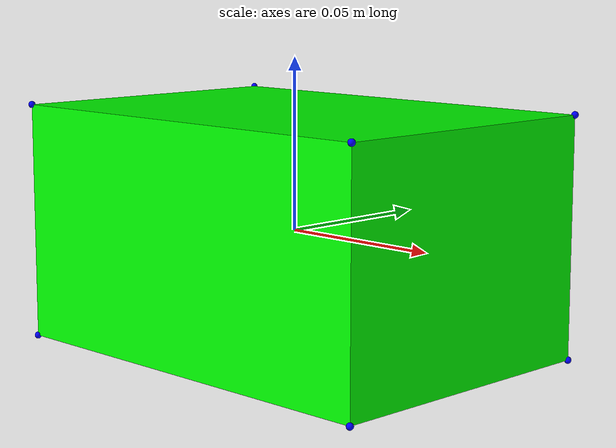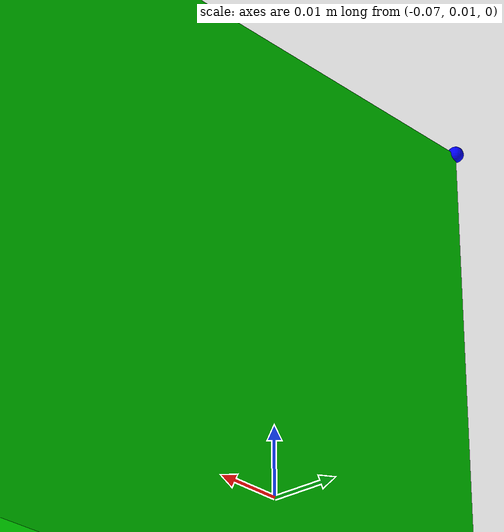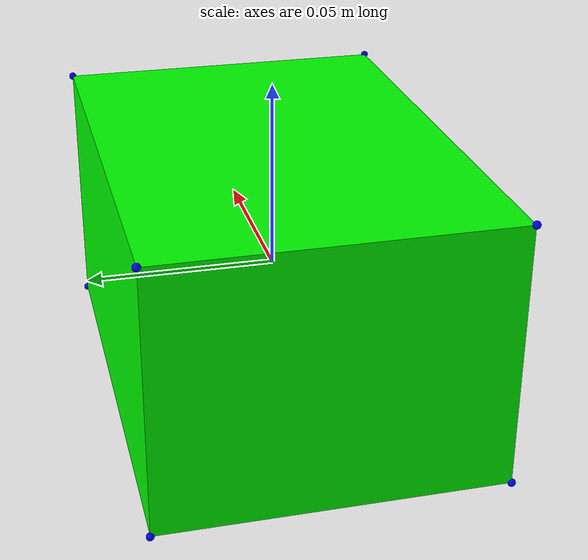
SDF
<?xml version="1.0"?>
<sdf version="1.7">
  <model name="box">

    <link name="corner_xynz">
      <inertial>
        <pose>0 0 0 0 0 0</pose>
        <mass>0</mass>
        <inertia>
          <ixx>0.</ixx>
          <ixy>0</ixy>
          <ixz>0</ixz>
          <iyy>0.</iyy>
          <iyz>0</iyz>
          <izz>0.</izz>
        </inertia>
      </inertial>
      <collision name="corner_xynz">
        <geometry>
          <sphere>
            <radius>0.001</radius>
          </sphere>
        </geometry>
        <drake:proximity_properties>
        <drake:mu_dynamic>0.3</drake:mu_dynamic>
        </drake:proximity_properties>
        <pose> 0.065 0.045 -0.035 0 0 0</pose>
      </collision>
      <visual name="corner_xynz">
        <geometry>
          <sphere>
            <radius>0.001</radius>
          </sphere>
        </geometry>
        <material>
        <diffuse>0 0 1 1</diffuse>
        </material>
        <pose> 0.065 0.045 -0.035 0 0 0</pose>
      </visual>
    </link>

    <link name="corner_xnynz">
      <inertial>
        <pose>0 0 0 0 0 0</pose>
        <mass>0</mass>
        <inertia>
          <ixx>0.</ixx>
          <ixy>0</ixy>
          <ixz>0</ixz>
          <iyy>0.</iyy>
          <iyz>0</iyz>
          <izz>0.</izz>
        </inertia>
      </inertial>
      <collision name="corner_xnynz">
        <geometry>
          <sphere>
            <radius>0.001</radius>
          </sphere>
        </geometry>
        <drake:proximity_properties>
        <drake:mu_dynamic>0.3</drake:mu_dynamic>
        </drake:proximity_properties>
        <pose> 0.065 -0.045 -0.035 0 0 0</pose>
      </collision>
      <visual name="corner_xnynz">
        <geometry>
          <sphere>
            <radius>0.001</radius>
          </sphere>
        </geometry>
        <material>
        <diffuse>0 0 1 1</diffuse>
        </material>
        <pose> 0.065 -0.045 -0.035 0 0 0</pose>
      </visual>
    </link>

    <link name="corner_nxynz">
      <inertial>
        <pose>0 0 0 0 0 0</pose>
        <mass>0</mass>
        <inertia>
          <ixx>0.</ixx>
          <ixy>0</ixy>
          <ixz>0</ixz>
          <iyy>0.</iyy>
          <iyz>0</iyz>
          <izz>0.</izz>
        </inertia>
      </inertial>
    <collision name="corner_nxynz">
        <geometry>
          <sphere>
            <radius>0.001</radius>
          </sphere>
        </geometry>
        <drake:proximity_properties>
        <drake:mu_dynamic>0.3</drake:mu_dynamic>
        </drake:proximity_properties>
        <pose>-0.065 0.045 -0.035 0 0 0</pose>
      </collision>
      <visual name="corner_nxynz">
        <geometry>
          <sphere>
            <radius>0.001</radius>
          </sphere>
        </geometry>
        <material>
        <diffuse>0 0 1 1</diffuse>
        </material>
        <pose>-0.065 0.045 -0.035 0 0 0</pose>
      </visual>
    </link>

    <link name="corner_nxnynz">
      <inertial>
        <pose>0 0 0 0 0 0</pose>
        <mass>0</mass>
        <inertia>
          <ixx>0.</ixx>
          <ixy>0</ixy>
          <ixz>0</ixz>
          <iyy>0.</iyy>
          <iyz>0</iyz>
          <izz>0.</izz>
        </inertia>
      </inertial>
      <collision name="corner_nxnynz">
        <geometry>
          <sphere>
            <radius>0.001</radius>
          </sphere>
        </geometry>
        <drake:proximity_properties>
          <drake:mu_dynamic>0.3</drake:mu_dynamic>
        </drake:proximity_properties>
        <pose>-0.065 -0.045 -0.035 0 0 0</pose>
      </collision>
      <visual name="corner_nxnynz">
        <geometry>
          <sphere>
            <radius>0.001</radius>
          </sphere>
        </geometry>
        <material>
        <diffuse>0 0 1 1</diffuse>
        </material>
        <pose>-0.065 -0.045 -0.035 0 0 0</pose>
      </visual>
    </link>

    <link name="corner_xyz">
      <inertial>
        <pose>0 0 0 0 0 0</pose>
        <mass>0</mass>
        <inertia>
          <ixx>0.</ixx>
          <ixy>0</ixy>
          <ixz>0</ixz>
          <iyy>0.</iyy>
          <iyz>0</iyz>
          <izz>0.</izz>
        </inertia>
      </inertial>
    <collision name="corner_xyz">
        <geometry>
          <sphere>
            <radius>0.001</radius>
          </sphere>
        </geometry>
        <drake:proximity_properties>
        <drake:mu_dynamic>0.3</drake:mu_dynamic>
        </drake:proximity_properties>
        <pose> 0.065 0.045 0.035 0 0 0</pose>
      </collision>
    <visual name="corner_xyz">
        <geometry>
          <sphere>
            <radius>0.001</radius>
          </sphere>
        </geometry>
        <material>
        <diffuse>0 0 1 1</diffuse>
        </material>
        <pose> 0.065 0.045 0.035 0 0 0</pose>
      </visual>
    </link>

    <link name="corner_xnyz">
      <inertial>
        <pose>0 0 0 0 0 0</pose>
        <mass>0</mass>
        <inertia>
          <ixx>0.</ixx>
          <ixy>0</ixy>
          <ixz>0</ixz>
          <iyy>0.</iyy>
          <iyz>0</iyz>
          <izz>0.</izz>
        </inertia>
      </inertial>
      <collision name="corner_xnyz">
        <geometry>
          <sphere>
            <radius>0.001</radius>
          </sphere>
        </geometry>
        <drake:proximity_properties>
        <drake:mu_dynamic>0.3</drake:mu_dynamic>
        </drake:proximity_properties>
        <pose> 0.065 -0.045 0.035 0 0 0</pose>
      </collision>
    <visual name="corner_xnyz">
        <geometry>
          <sphere>
            <radius>0.001</radius>
          </sphere>
        </geometry>
        <material>
        <diffuse>0 0 1 1</diffuse>
        </material>
        <pose> 0.065 -0.045 0.035 0 0 0</pose>
      </visual>
    </link>

    <link name="corner_nxyz">
      <inertial>
        <pose>0 0 0 0 0 0</pose>
        <mass>0</mass>
        <inertia>
          <ixx>0.</ixx>
          <ixy>0</ixy>
          <ixz>0</ixz>
          <iyy>0.</iyy>
          <iyz>0</iyz>
          <izz>0.</izz>
        </inertia>
      </inertial>
    <collision name="corner_nxyz">
        <geometry>
          <sphere>
            <radius>0.001</radius>
          </sphere>
        </geometry>
        <drake:proximity_properties>
        <drake:mu_dynamic>0.3</drake:mu_dynamic>
        </drake:proximity_properties>
        <pose>-0.065 0.045 0.035 0 0 0</pose>
      </collision>
    <visual name="corner_nxyz">
        <geometry>
          <sphere>
            <radius>0.001</radius>
          </sphere>
        </geometry>
        <material>
        <diffuse>0 0 1 1</diffuse>
        </material>
        <pose>-0.065 0.045 0.035 0 0 0</pose>
      </visual>
    </link>

    <link name="corner_nxnyz">
      <inertial>
        <pose>0 0 0 0 0 0</pose>
        <mass>0</mass>
        <inertia>
          <ixx>0.</ixx>
          <ixy>0</ixy>
          <ixz>0</ixz>
          <iyy>0.</iyy>
          <iyz>0</iyz>
          <izz>0.</izz>
        </inertia>
      </inertial>
    <collision name="corner_nxnyz">
        <geometry>
          <sphere>
            <radius>0.001</radius>
          </sphere>
        </geometry>
        <drake:proximity_properties>
        <drake:mu_dynamic>0.3</drake:mu_dynamic>
        </drake:proximity_properties>
        <pose>-0.065 -0.045 0.035 0 0 0</pose>
      </collision>
    <visual name="corner_nxnyz">
        <geometry>
          <sphere>
            <radius>0.001</radius>
          </sphere>
        </geometry>
        <material>
        <diffuse>0 0 1 1</diffuse>
        </material>
        <pose>-0.065 -0.045 0.035 0 0 0</pose>
      </visual>
    </link>

    <link name="box">
      <inertial>
        <pose>0 0 0 0 0 0</pose>
        <mass>1</mass>
        <!-- Inertia values were calculated to be consistent with the mass and
             geometry size, assuming a uniform density. -->
        <inertia>
          <ixx>0.001083</ixx>
          <ixy>0</ixy>
          <ixz>0</ixz>
          <iyy>0.001817</iyy>
          <iyz>0</iyz>
          <izz>0.002083</izz>
        </inertia>
      </inertial>

      <visual name="box">
        <geometry>
          <box>
            <size>0.13 0.09 0.07</size>
          </box>
        </geometry>
        <material>
          <diffuse>0 1 0 1</diffuse>
        </material>
      </visual>
      <collision name="volume">
            <geometry>
          <box>
            <size>0.13 0.09 0.07</size>
          </box>
        </geometry>
        <drake:proximity_properties>
        <drake:mu_dynamic>0.3</drake:mu_dynamic>
        </drake:proximity_properties>
      </collision>
    </link>

    <!-- Define the fixed joints connecting each sphere to the cube -->
    <joint name="corner_xyz_joint" type="fixed">
      <!-- Parent and child links for the joint -->
      <parent>box</parent>
      <child>corner_xyz</child>
      <!-- Pose of the joint relative to the parent link -->
      <pose>0 0 0 0 0 0</pose>
    </joint>

    <joint name="corner_nxyz_joint" type="fixed">
      <!-- Parent and child links for the joint -->
      <parent>box</parent>
      <child>corner_nxyz</child>
      <!-- Pose of the joint relative to the parent link -->
      <pose>0 0 0 0 0 0</pose>
    </joint>

    <joint name="corner_nxnyz_joint" type="fixed">
      <!-- Parent and child links for the joint -->
      <parent>box</parent>
      <child>corner_nxnyz</child>
      <!-- Pose of the joint relative to the parent link -->
      <pose>0 0 0 0 0 0</pose>
    </joint>

    <joint name="corner_xnynz_joint" type="fixed">
      <!-- Parent and child links for the joint -->
      <parent>box</parent>
      <child>corner_xnynz</child>
      <!-- Pose of the joint relative to the parent link -->
      <pose>0 0 0 0 0 0</pose>
    </joint>

    <joint name="corner_xynz_joint" type="fixed">
      <!-- Parent and child links for the joint -->
      <parent>box</parent>
      <child>corner_xynz</child>
      <!-- Pose of the joint relative to the parent link -->
      <pose>0 0 0 0 0 0</pose>
    </joint>

    <joint name="corner_xnyz_joint" type="fixed">
      <!-- Parent and child links for the joint -->
      <parent>box</parent>
      <child>corner_xnyz</child>
      <!-- Pose of the joint relative to the parent link -->
      <pose>0 0 0 0 0 0</pose>
    </joint>

    <joint name="corner_nxnynz_joint" type="fixed">
      <!-- Parent and child links for the joint -->
      <parent>box</parent>
      <child>corner_nxnynz</child>
      <!-- Pose of the joint relative to the parent link -->
       <pose>0 0 0 0 0 0</pose>
    </joint>

    <joint name="corner_nxynz_joint" type="fixed">
      <!-- Parent and child links for the joint -->
      <parent>box</parent>
      <child>corner_nxynz</child>
      <!-- Pose of the joint relative to the parent link -->
       <pose>0 0 0 0 0 0</pose>
    </joint>

  </model>
</sdf>
